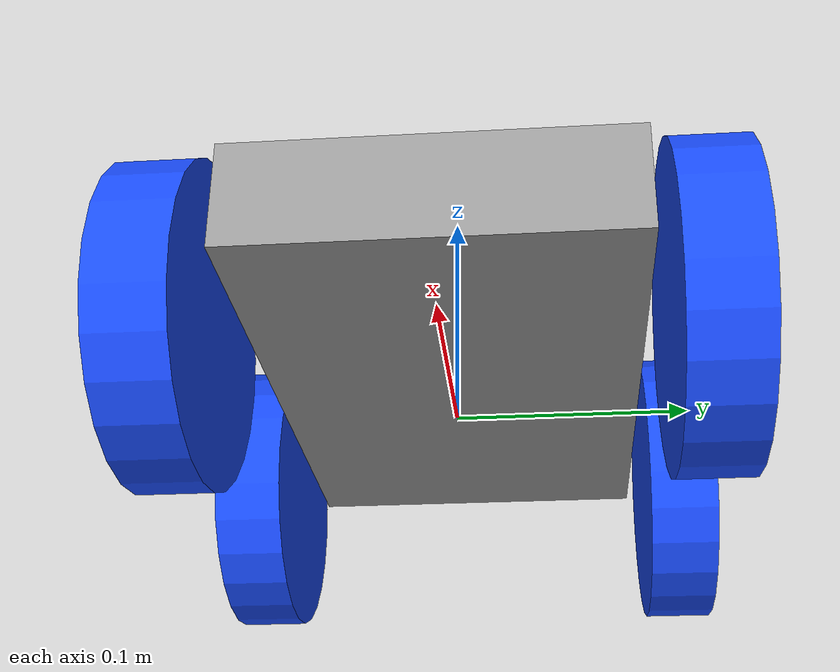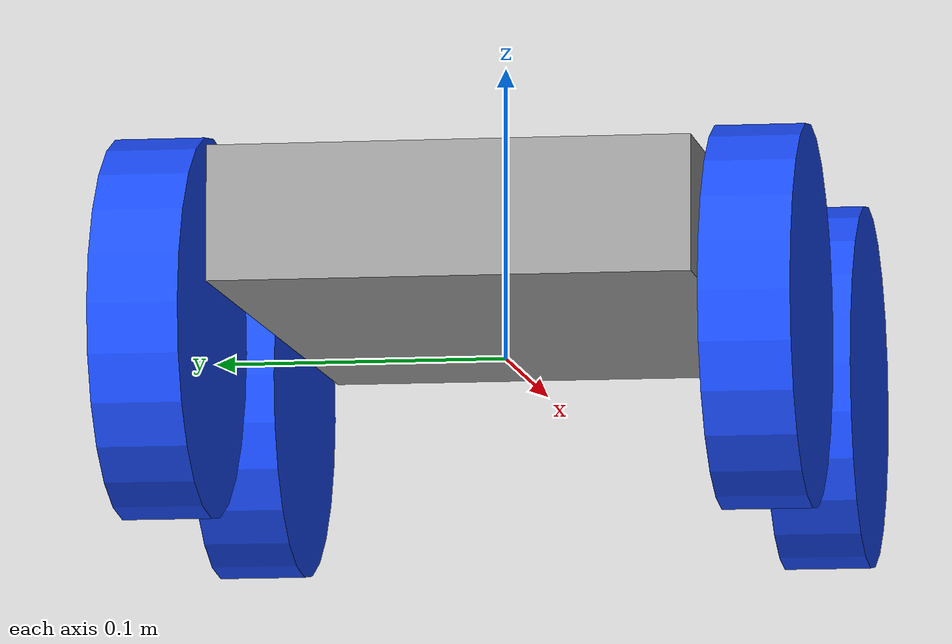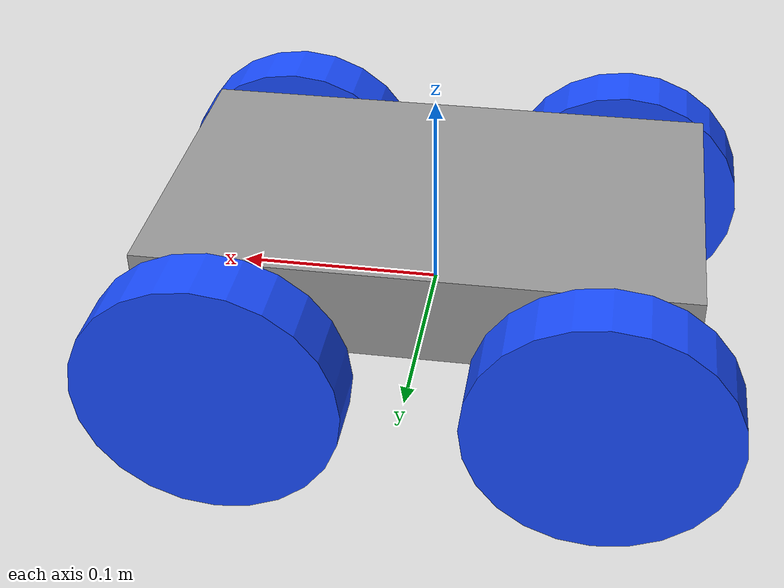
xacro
<?xml version="1.0"?>
<robot xmlns:xacro="http://www.ros.org/wiki/xacro">

  <!-- Include inertia macros -->
  <xacro:include filename="inertial_macros.xacro"/>

  <!-- ===== Dimensions (measure your chassis and edit these) ===== -->
  <xacro:property name="chassis_length" value="0.26"/>
  <xacro:property name="chassis_width"  value="0.16"/>
  <xacro:property name="chassis_height" value="0.045"/>
  <xacro:property name="chassis_mass"   value="1.5"/>

  <xacro:property name="wheel_radius" value="0.0635"/> <!-- 127 mm wheel -> radius 63.5 mm -->
  <xacro:property name="wheel_width"  value="0.03"/>
  <xacro:property name="wheel_mass"   value="0.1"/>
  <xacro:property name="wheel_x"      value="0.09"/>   <!-- front/rear axle offset from centre -->
  <xacro:property name="wheel_y"      value="${chassis_width/2 + wheel_width/2 + 0.005}"/>
  <!-- Chassis bottom sits this high above the wheel axles -->
  <xacro:property name="chassis_z"    value="0.01"/>

  <!-- Materials -->
  <material name="black"><color rgba="0 0 0 1"/></material>
  <material name="grey"><color rgba="0.6 0.6 0.6 1"/></material>
  <material name="blue"><color rgba="0.1 0.3 1 1"/></material>

  <!-- Base link: centre of the robot, at wheel axle height -->
  <link name="base_link"/>

  <!-- Footprint: projection of base_link on the ground (used by Nav2) -->
  <joint name="base_footprint_joint" type="fixed">
    <parent link="base_link"/>
    <child link="base_footprint"/>
    <origin xyz="0 0 ${-wheel_radius}"/>
  </joint>
  <link name="base_footprint"/>

  <!-- Chassis -->
  <joint name="chassis_joint" type="fixed">
    <parent link="base_link"/>
    <child link="chassis"/>
    <origin xyz="0 0 ${chassis_z}"/>
  </joint>

  <link name="chassis">
    <visual>
      <origin xyz="0 0 ${chassis_height/2}"/>
      <geometry>
        <box size="${chassis_length} ${chassis_width} ${chassis_height}"/>
      </geometry>
      <material name="grey"/>
    </visual>
    <collision>
      <origin xyz="0 0 ${chassis_height/2}"/>
      <geometry>
        <box size="${chassis_length} ${chassis_width} ${chassis_height}"/>
      </geometry>
    </collision>
    <xacro:inertial_box mass="${chassis_mass}" x="${chassis_length}" y="${chassis_width}" z="${chassis_height}">
      <origin xyz="0 0 ${chassis_height/2}"/>
    </xacro:inertial_box>
  </link>

  <gazebo reference="chassis">
    <material>Gazebo/Grey</material>
  </gazebo>

  <!-- ===== WHEELS (4WD skid steer, non-encoded DC motors) ===== -->
  <!-- prefix: front_left etc.  x/y: position  -->
  <xacro:macro name="wheel" params="prefix x y">
    <joint name="${prefix}_wheel_joint" type="continuous">
      <parent link="base_link"/>
      <child link="${prefix}_wheel"/>
      <!-- Roll the cylinder so its axis points along +Y -->
      <origin xyz="${x} ${y} 0" rpy="${-pi/2} 0 0"/>
      <axis xyz="0 0 1"/>
    </joint>

    <link name="${prefix}_wheel">
      <visual>
        <geometry>
          <cylinder radius="${wheel_radius}" length="${wheel_width}"/>
        </geometry>
        <material name="blue"/>
      </visual>
      <collision>
        <geometry>
          <cylinder radius="${wheel_radius}" length="${wheel_width}"/>
        </geometry>
      </collision>
      <xacro:inertial_cylinder mass="${wheel_mass}" length="${wheel_width}" radius="${wheel_radius}">
        <origin xyz="0 0 0"/>
      </xacro:inertial_cylinder>
    </link>

    <gazebo reference="${prefix}_wheel">
      <material>Gazebo/Blue</material>
      <!-- Skid steer needs some lateral slip to turn in place -->
      <mu1>1.0</mu1>
      <mu2>0.5</mu2>
      <kp>1e6</kp>
      <kd>100.0</kd>
      <minDepth>0.001</minDepth>
    </gazebo>
  </xacro:macro>

  <xacro:wheel prefix="front_left"  x="${wheel_x}"  y="${wheel_y}"/>
  <xacro:wheel prefix="front_right" x="${wheel_x}"  y="${-wheel_y}"/>
  <xacro:wheel prefix="rear_left"   x="${-wheel_x}" y="${wheel_y}"/>
  <xacro:wheel prefix="rear_right"  x="${-wheel_x}" y="${-wheel_y}"/>

</robot>

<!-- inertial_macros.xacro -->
<robot xmlns:xacro="http://www.ros.org/wiki/xacro">

  <!-- Sphere inertia -->
  <xacro:macro name="inertial_sphere" params="mass radius *origin">
    <inertial>
      <xacro:insert_block name="origin"/>
      <mass value="${mass}" />
      <inertia ixx="${(2/5) * mass * radius * radius}"
               ixy="0" ixz="0"
               iyy="${(2/5) * mass * radius * radius}"
               iyz="0"
               izz="${(2/5) * mass * radius * radius}" />
    </inertial>
  </xacro:macro>

  <!-- Box inertia -->
  <xacro:macro name="inertial_box" params="mass x y z *origin">
    <inertial>
      <xacro:insert_block name="origin"/>
      <mass value="${mass}" />
      <inertia ixx="${(1/12)*mass*(y*y+z*z)}"
               ixy="0" ixz="0"
               iyy="${(1/12)*mass*(x*x+z*z)}"
               iyz="0"
               izz="${(1/12)*mass*(x*x+y*y)}" />
    </inertial>
  </xacro:macro>

  <!-- Cylinder inertia -->
  <xacro:macro name="inertial_cylinder" params="mass length radius *origin">
    <inertial>
      <xacro:insert_block name="origin"/>
      <mass value="${mass}" />
      <inertia ixx="${(1/12)*mass*(3*radius*radius + length*length)}"
               ixy="0" ixz="0"
               iyy="${(1/12)*mass*(3*radius*radius + length*length)}"
               iyz="0"
               izz="${(1/2)*mass*(radius*radius)}" />
    </inertial>
  </xacro:macro>

</robot>
